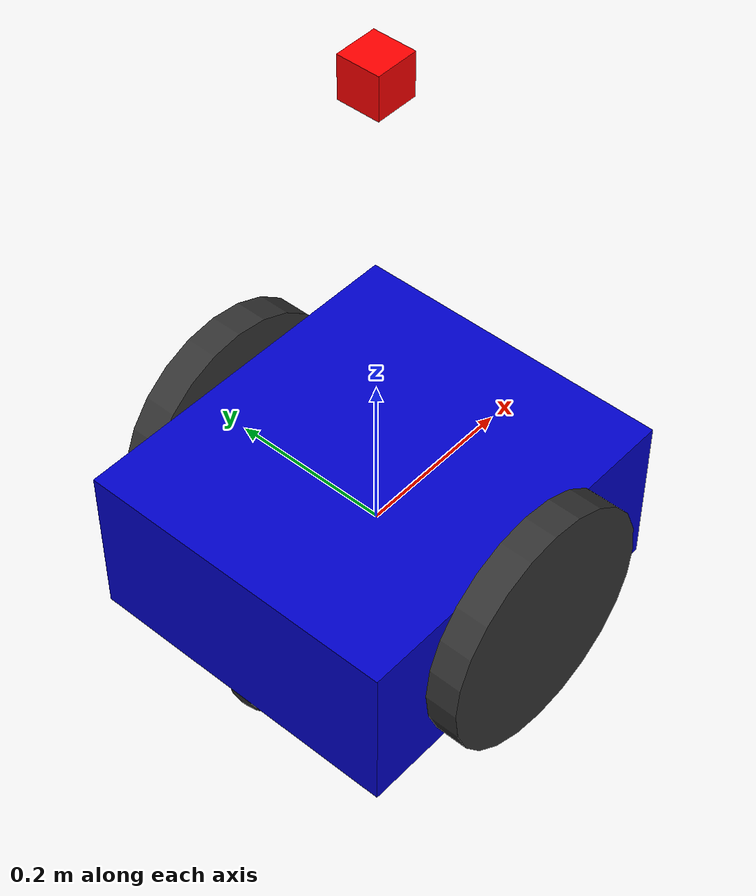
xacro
<?xml version="1.0"?>
<robot xmlns:xacro="http://www.ros.org/wiki/xacro" name="robot">

    <!-- Arguments -->
    <xacro:arg name='ptz_camera' default='true'/>
    <xacro:arg name='360_camera' default='false'/>
    <xacro:arg name="sparse_pointcloud" default="false"/>

    <!-- Base Robot -->
    <xacro:include filename="$(find ptz_exploration_sim)/urdf/base.urdf.xacro"/>

    <!-- Sensors -->

    <!-- 360 Degree Camera -->
    <xacro:if value="$(arg 360_camera)">
        <xacro:include filename="$(find ptz_exploration_sim)/urdf/camera.urdf.xacro"/>

        <xacro:camera name="front_cam_360" parent_link="base_link">
            <origin xyz="0.0 0.0 0.5" rpy="0.0 0.0 0.0"/>
        </xacro:camera>
        <xacro:camera name="rear_cam_360" parent_link="base_link">
            <origin xyz="0.0 0.0 0.5" rpy="0.0 0.0 ${pi}"/>
        </xacro:camera>
        <xacro:camera name="left_cam_360" parent_link="base_link">
            <origin xyz="0.0 0.0 0.5" rpy="0.0 0.0 1.5708"/>
        </xacro:camera>
        <xacro:camera name="right_cam_360" parent_link="base_link">
            <origin xyz="0.0 0.0 0.5" rpy="0.0 0.0 -1.5708"/>
        </xacro:camera>
    </xacro:if>

    <!-- PTZ Camera -->
    <xacro:if value="$(arg ptz_camera)">
        <xacro:include filename="$(find ptz_exploration_sim)/urdf/ptz.urdf.xacro"/>
        <xacro:ptz name="ptz_cam" parent_link="base_link">
            <origin xyz="0.0 0.0 0.6" rpy="0.0 0.0 0.0"/>
        </xacro:ptz>
    </xacro:if>

</robot>

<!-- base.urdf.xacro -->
<robot xmlns:xacro="http://www.ros.org/wiki/xacro" name="base">

    <!-- Materials -->
    <material name="dark_grey"><color rgba="0.2 0.2 0.2 1.0"/></material>
    <material name="blue"><color rgba="0.0 0.0 0.8 1.0"/></material>

    <!-- Properties -->
    <xacro:property name="base_width" value="0.4"/>
    <xacro:property name="base_length" value="0.45"/>
    <xacro:property name="base_height" value="0.2"/>
    <xacro:property name="wheel_radius" value="0.15"/>
    <xacro:property name="wheel_width" value="0.04"/>
    <xacro:property name="wheel_offset_z" value="0.0"/>
    <xacro:property name="wheel_x_offset" value="0.0"/>
    <xacro:property name="caster_radius" value="0.05"/>

    <!-- Base Link (root) -->
    <link name="base_link">
        <visual>
            <geometry><box size="${base_length} ${base_width} ${base_height}"/></geometry>
            <material name="blue"/>
        </visual>
        <collision>
            <geometry><box size="${base_length} ${base_width} ${base_height}"/></geometry>
        </collision>
        <inertial>
            <mass value="35.0"/>
            <inertia ixx="0.85" ixy="0" ixz="0" iyy="1.17" iyz="0" izz="1.78"/>
        </inertial>
    </link>

    <!-- Footprint below base_link -->
    <link name="base_footprint"/>

    <joint name="base_footprint_joint" type="fixed">
        <parent link="base_link"/>
        <child link="base_footprint"/>
        <origin xyz="0 0 ${-wheel_radius}" rpy="0 0 0"/>
    </joint>

    <!-- Wheel Macro -->
    <xacro:macro name="wheel" params="prefix x_reflect y_reflect">
        <link name="${prefix}_wheel">
            <visual>
                <origin xyz="0 0 0" rpy="${pi/2} 0 0"/>
                <geometry><cylinder radius="${wheel_radius}" length="${wheel_width}"/></geometry>
                <material name="dark_grey"/>
            </visual>
            <collision>
                <origin xyz="0 0 0" rpy="${pi/2} 0 0"/>
                <geometry><cylinder radius="${wheel_radius}" length="${wheel_width}"/></geometry>
            </collision>
            <inertial>
                <mass value="2.0"/>
                <inertia ixx="0.01" ixy="0" ixz="0" iyy="0.01" iyz="0" izz="0.01"/>
            </inertial>
        </link>

        <joint name="${prefix}_wheel_joint" type="continuous">
            <parent link="base_link"/>
            <child link="${prefix}_wheel"/>
            <origin xyz="${x_reflect*wheel_x_offset} ${y_reflect*(base_width/2+wheel_width/2)} ${-wheel_offset_z}" rpy="0 0 0"/>
            <axis xyz="0 1 0"/>
        </joint>

        <gazebo reference="${prefix}_wheel">
            <mu1>0.8</mu1>
            <mu2>0.8</mu2>
            <kp>1000000.0</kp>
            <kd>1.0</kd>
        </gazebo>
    </xacro:macro>

    <!-- Drive wheels centered on base_link -->
    <xacro:wheel prefix="left"  x_reflect="1"  y_reflect="1" />
    <xacro:wheel prefix="right" x_reflect="1"  y_reflect="-1" />

    <!-- Passive casters to prevent rocking -->
    <link name="front_caster">
        <visual>
            <origin xyz="0 0 0" rpy="0 0 0"/>
            <geometry><sphere radius="${caster_radius}"/></geometry>
            <material name="dark_grey"/>
        </visual>
        <collision>
            <origin xyz="0 0 0" rpy="0 0 0"/>
            <geometry><sphere radius="${caster_radius}"/></geometry>
        </collision>
        <inertial>
            <mass value="0.5"/>
            <inertia ixx="0.001" ixy="0" ixz="0" iyy="0.001" iyz="0" izz="0.001"/>
        </inertial>
    </link>

    <gazebo reference="front_caster">
        <mu1>0.6</mu1>
        <mu2>0.6</mu2>
    </gazebo>

    <link name="rear_caster">
        <visual>
            <origin xyz="0 0 0" rpy="0 0 0"/>
            <geometry><sphere radius="${caster_radius}"/></geometry>
            <material name="dark_grey"/>
        </visual>
        <collision>
            <origin xyz="0 0 0" rpy="0 0 0"/>
            <geometry><sphere radius="${caster_radius}"/></geometry>
        </collision>
        <inertial>
            <mass value="0.5"/>
            <inertia ixx="0.001" ixy="0" ixz="0" iyy="0.001" iyz="0" izz="0.001"/>
        </inertial>
    </link>

    <gazebo reference="rear_caster">
        <mu1>0.6</mu1>
        <mu2>0.6</mu2>
    </gazebo>

    <joint name="front_caster_joint" type="fixed">
        <parent link="base_link"/>
        <child link="front_caster"/>
        <origin xyz="${base_length/2 - caster_radius} 0 ${-(wheel_radius - caster_radius)}" rpy="0 0 0"/>
    </joint>

    <joint name="rear_caster_joint" type="fixed">
        <parent link="base_link"/>
        <child link="rear_caster"/>
        <origin xyz="${-base_length/2 + caster_radius} 0 ${-(wheel_radius - caster_radius)}" rpy="0 0 0"/>
    </joint>

    <gazebo>
        <plugin filename="ignition-gazebo-diff-drive-system" name="ignition::gazebo::systems::DiffDrive">
            <topic>cmd_vel</topic>
            <left_joint>left_wheel_joint</left_joint>
            <right_joint>right_wheel_joint</right_joint>

            <!-- Kinematics -->
            <wheel_separation>${base_width + wheel_width}</wheel_separation>
            <wheel_radius>${wheel_radius}</wheel_radius>

            <!-- Limits & Output -->
            <max_wheel_torque>50</max_wheel_torque>
            <max_wheel_acceleration>5.0</max_wheel_acceleration>

            <!-- Odometry -->
            <publish_odom_tf>false</publish_odom_tf>
            <publish_wheel_tf>false</publish_wheel_tf>

        </plugin>

        <plugin filename="ignition-gazebo-odometry-publisher-system" name="ignition::gazebo::systems::OdometryPublisher">
            <odom_frame>odom</odom_frame>
            <robot_base_frame>base_link</robot_base_frame>

            <!-- This tells the plugin to publish the TF transform directly -->
            <publish_odom_tf>true</publish_odom_tf>

            <!-- The topic where the nav_msgs/Odometry will be published -->
            <tf_topic>tf</tf_topic>
            <odom_topic>odom</odom_topic>

            <!-- 0 = 3D (X,Y,Z,R,P,Y), 2 = 2D (X,Y,Yaw) -->
            <dimensions>2</dimensions>
        </plugin>

        <plugin filename="ignition-gazebo-joint-state-publisher-system" name="ignition::gazebo::systems::JointStatePublisher">
            <topic>joint_states</topic>
        </plugin>
    </gazebo>

</robot>

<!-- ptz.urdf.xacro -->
<robot xmlns:xacro="http://www.ros.org/wiki/xacro">
    <xacro:macro name="ptz" params="name parent_link *origin">

        <joint name="${name}_base_joint" type="fixed">
            <xacro:insert_block name="origin" />
            <parent link="${parent_link}"/>
            <child link="${name}_origin_link"/>
        </joint>

        <link name="${name}_origin_link"></link>

        <joint name="${name}_pan_joint" type="continuous">
            <parent link="${name}_origin_link"/>
            <child link="${name}_pan_link_virtual"/>
            <axis xyz="0 0 1"/>
            <damping>8.0</damping>
            <friction>4.0</friction>
        </joint>

        <link name="${name}_pan_link_virtual">
            <inertial>
                <mass value="1.0"/>
                <inertia ixx="0.005" ixy="0" ixz="0" iyy="0.005" iyz="0" izz="0.005"/>
            </inertial>
        </link>

        <joint name="${name}_tilt_joint" type="revolute">
            <origin xyz="0 0 0" rpy="0 0 0"/>
            <parent link="${name}_pan_link_virtual"/>
            <child link="${name}_link"/>
            <axis xyz="0 1 0"/>
            <limit lower="-3.14" upper="3.14" effort="10.0" velocity="5.0"/>
            <damping>8.0</damping>
            <friction>4.0</friction>
        </joint>

        <link name="${name}_link">
            <visual>
                <geometry>
                    <box size="0.05 0.05 0.05"/>
                </geometry>
                <material name="red">
                    <color rgba="1 0 0 1"/>
                </material>
            </visual>
            <inertial>
                <mass value="2.0"/>
                <inertia ixx="0.01" ixy="0" ixz="0" iyy="0.01" iyz="0" izz="0.01"/>
            </inertial>
        </link>

        <gazebo>
            <plugin filename="ignition-gazebo-joint-position-controller-system" name="ignition::gazebo::systems::JointPositionController">
                <joint_name>${name}_pan_joint</joint_name>
                <topic>${name}/cmd_pan</topic>
                <p_gain>4.0</p_gain>
                <i_gain>0.0</i_gain>
                <d_gain>0.8</d_gain>
                <i_max>0.2</i_max>
                <i_min>-0.2</i_min>
            </plugin>

            <plugin filename="ignition-gazebo-joint-position-controller-system" name="ignition::gazebo::systems::JointPositionController">
                <joint_name>${name}_tilt_joint</joint_name>
                <topic>${name}/cmd_tilt</topic>
                <p_gain>4.0</p_gain>
                <i_gain>0.0</i_gain>
                <d_gain>0.8</d_gain>
                <i_max>0.2</i_max>
                <i_min>-0.2</i_min>
            </plugin>

        </gazebo>

        <gazebo reference="${name}_link">
            <sensor type="camera" name="${name}_raw_sensor">
                <update_rate>5.0</update_rate>
                <always_on>1</always_on>
                <topic>${name}/raw_full/image</topic>
                <visualize>true</visualize>
                <ignition_frame_id>${name}_optical_link</ignition_frame_id>
                <camera>
                    <horizontal_fov>${pi/2}</horizontal_fov>
                    <image>
                       <width>3200</width>
                        <height>1800</height>
                        <format>R8G8B8</format>
                    </image>
                    <clip>
                        <near>0.1</near>
                        <far>100.0</far>
                    </clip>
                </camera>
            </sensor>
        </gazebo>

    </xacro:macro>
</robot>
